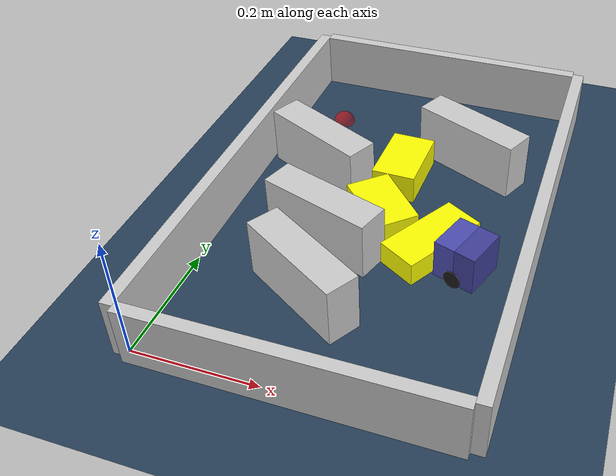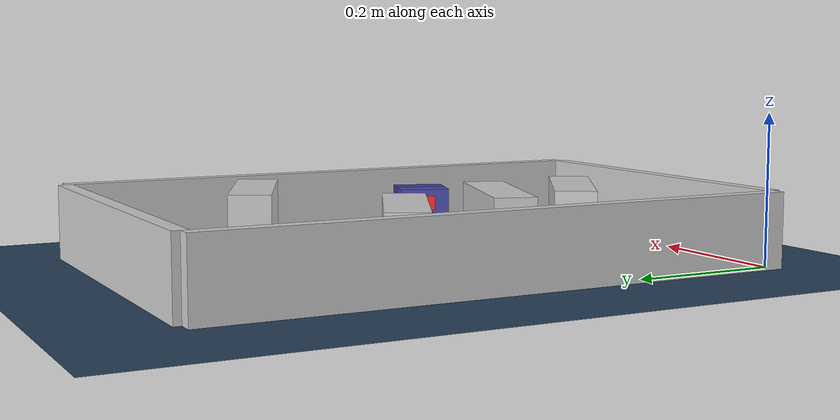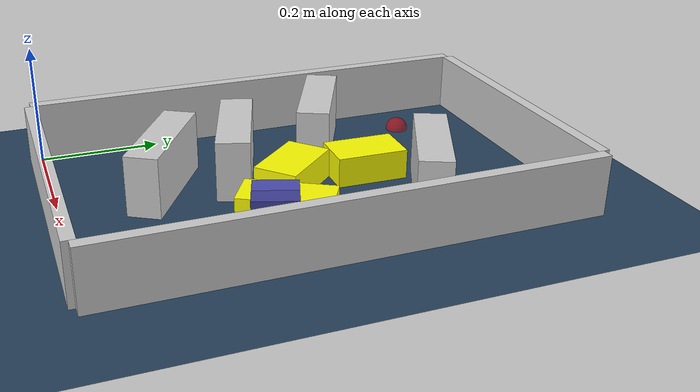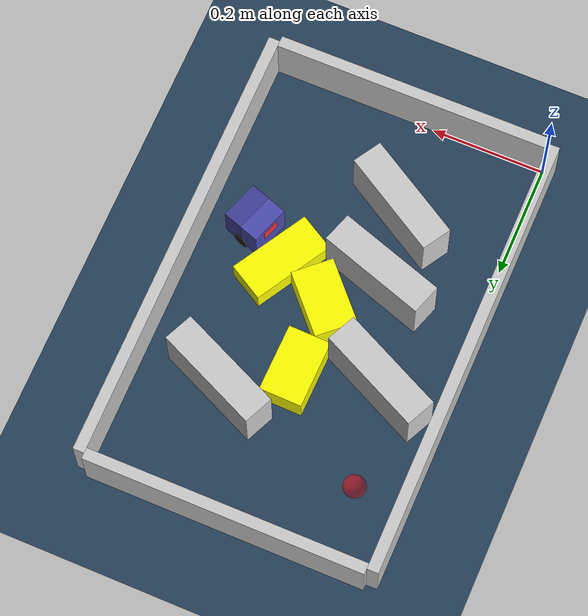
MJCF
<?xml version='1.0' encoding='utf-8'?>
<mujoco model="real_buildable">
  <compiler angle="degree" />
  <option timestep="0.002" integrator="implicitfast" iterations="100" cone="elliptic" />
  <default>
    <geom density="1" />
  </default>
  <asset>
    <texture builtin="gradient" height="3072" rgb1="0.3 0.5 0.7" rgb2="0 0 0" type="skybox" width="512" />
    <texture builtin="checker" height="300" mark="edge" markrgb="0.8 0.8 0.8" name="groundplane" rgb1="0.2 0.3 0.4" rgb2="0.1 0.2 0.3" type="2d" width="300" />
    <material name="groundplane" reflectance="0.2" texrepeat="5 5" texture="groundplane" texuniform="true" />
  </asset>
  <worldbody>
    <light dir="0 0 -1" directional="true" pos="0 0 1.5" />
    <geom name="floor" type="plane" condim="4" friction="0.5 0.005 0.001" material="groundplane" size="0 0 0.05" />
    <body name="walls">
      <geom name="wall_boundary_left" type="box" condim="4" friction="1.0 0.005 0.0001" rgba="0.8 0.8 0.8 1" pos="-0.010000 0.387500 0.050000" euler="0 0 0.000000" size="0.010000 0.397500 0.050000" />
      <geom name="wall_boundary_right" type="box" condim="4" friction="1.0 0.005 0.0001" rgba="0.8 0.8 0.8 1" pos="0.500000 0.387500 0.050000" euler="0 0 0.000000" size="0.010000 0.397500 0.050000" />
      <geom name="wall_boundary_bottom" type="box" condim="4" friction="1.0 0.005 0.0001" rgba="0.8 0.8 0.8 1" pos="0.245000 -0.010000 0.050000" euler="0 0 0.000000" size="0.245000 0.010000 0.050000" />
      <geom name="wall_boundary_top" type="box" condim="4" friction="1.0 0.005 0.0001" rgba="0.8 0.8 0.8 1" pos="0.245000 0.785000 0.050000" euler="0 0 0.000000" size="0.245000 0.010000 0.050000" />
      <geom name="wall_inner_1" type="box" condim="4" friction="1.0 0.005 0.0001" rgba="0.8 0.8 0.8 1" pos="0.191549 0.172272 0.050000" euler="0 0 -31.119121" size="0.097500 0.027500 0.050000" />
      <geom name="wall_inner_2" type="box" condim="4" friction="1.0 0.005 0.0001" rgba="0.8 0.8 0.8 1" pos="0.176347 0.297541 0.050000" euler="0 0 -18.430544" size="0.097500 0.027500 0.050000" />
      <geom name="wall_inner_3" type="box" condim="4" friction="1.0 0.005 0.0001" rgba="0.8 0.8 0.8 1" pos="0.106000 0.470000 0.050000" euler="0 0 154.200000" size="0.097500 0.027500 0.050000" />
      <geom name="wall_inner_4" type="box" condim="4" friction="1.0 0.005 0.0001" rgba="0.8 0.8 0.8 1" pos="0.350000 0.570000 0.050000" euler="0 0 155.700000" size="0.097500 0.027500 0.050000" />
    </body>
    <body name="car" pos="0.40793418834879125 0.28898008731618779 0.01" quat="0.16583938382411376 0 0 0.98615277658831257">
      <freejoint name="car_freejoint" />
      <inertial pos="0 0 0.0375" mass="0.35" diaginertia="0.000266 0.000266 0.000286" />
      <geom name="front_chassis_collision" type="box" pos="0.0175 0 0.0375" size="0.0175 0.035 0.0325" rgba="0.3 0.3 0.7 1" />
      <geom name="rear_chassis_collision" type="box" pos="-0.0175 0 0.0375" size="0.0175 0.035 0.0325" rgba="0.25 0.25 0.6 1" />
      <geom name="front_marker" type="box" pos="0.034 0 0.0505" size="0.002 0.015 0.01" rgba="1 0.2 0.2 1" contype="0" conaffinity="0" />
      <body name="rear_support_body" pos="-0.03 0 0.0025">
        <joint name="rear_caster_joint" type="ball" damping="0.0001" />
        <inertial pos="0 0 0" mass="0.025" diaginertia="0.000001 0.000001 0.000001" />
        <geom name="rear_support" type="sphere" pos="0 0 0" size="0.0025" friction="0 0 0" rgba="0.7 0.1 0.1 1" />
      </body>
      <body name="front_support_body" pos="0.03 0 0.0025">
        <joint name="front_caster_joint" type="ball" damping="0.0001" />
        <inertial pos="0 0 0" mass="0.025" diaginertia="0.000001 0.000001 0.000001" />
        <geom name="front_support" type="sphere" pos="0 0 0" size="0.0025" friction="0 0 0" rgba="0.1 0.7 0.1 1" />
      </body>
      <body name="left_wheel" pos="0 0.0375 0.015">
        <inertial pos="0 0 0" mass="0.05" diaginertia="0.000003 0.000006 0.000003" />
        <joint name="left_wheel_joint" type="hinge" axis="0 1 0" damping="0.01" armature="0.0001" />
        <geom name="left_wheel_collision" type="cylinder" size="0.015 0.0005" euler="90 0 0" rgba="0.1 0.1 0.1 1" />
      </body>
      <body name="right_wheel" pos="0 -0.0375 0.015">
        <inertial pos="0 0 0" mass="0.05" diaginertia="0.000003 0.000006 0.000003" />
        <joint name="right_wheel_joint" type="hinge" axis="0 1 0" damping="0.01" armature="0.0001" />
        <geom name="right_wheel_collision" type="cylinder" size="0.015 0.0005" euler="90 0 0" rgba="0.1 0.1 0.1 1" />
      </body>
    </body>
    <body name="obstacle_0_movable">
      <geom name="obstacle_0_movable" condim="4" pos="0.3422210209922103 0.33017032390825468 0.02" friction="1 0.005 0.0001" rgba="1 1 0 1" size="0.035000 0.075000 0.020000" type="box" mass="0.1" quat="0.25942467705768596 0 0 0.96576334416538889" />
      <joint type="free" />
    </body>
    <body name="obstacle_1_movable">
      <geom name="obstacle_1_movable" condim="4" pos="0.2442788055517541 0.5014010423678088 0.025000000000000001" friction="1 0.005 0.0001" rgba="1 1 0 1" size="0.037500 0.060000 0.025000" type="box" mass="0.1" quat="0.99994159230710356 0 0 -0.01080795884218437" />
      <joint type="free" />
    </body>
    <body name="obstacle_2_movable">
      <geom name="obstacle_2_movable" condim="4" pos="0.2470785636179563 0.3721290447722938 0.025000000000000001" friction="1 0.005 0.0001" rgba="1 1 0 1" size="0.037500 0.060000 0.025000" type="box" mass="0.1" quat="0.93217735030087956 0 0 0.36200191655021852" />
      <joint type="free" />
    </body>
    <site name="goal" type="sphere" pos="0.080000 0.640000 0.0" size="0.02" rgba="1 0 0 0.5" />
  </worldbody>
  <actuator>
    <velocity name="left_wheel_drive" joint="left_wheel_joint" ctrlrange="-25 25" kv="0.75" forcerange="-0.5 0.5" />
    <velocity name="right_wheel_drive" joint="right_wheel_joint" ctrlrange="-25 25" kv="0.75" forcerange="-0.5 0.5" />
  </actuator>
</mujoco>
